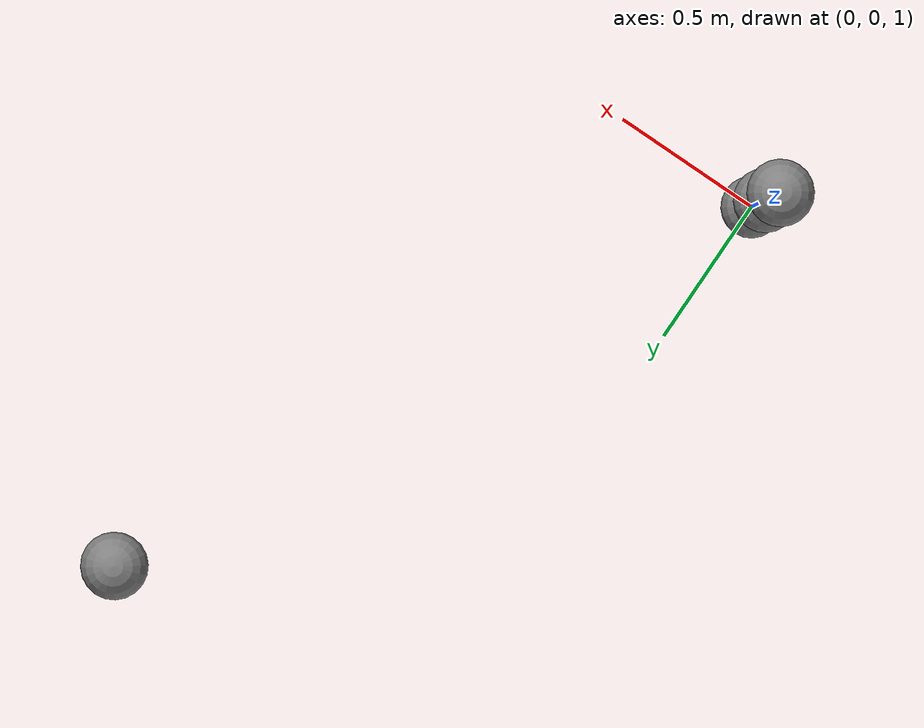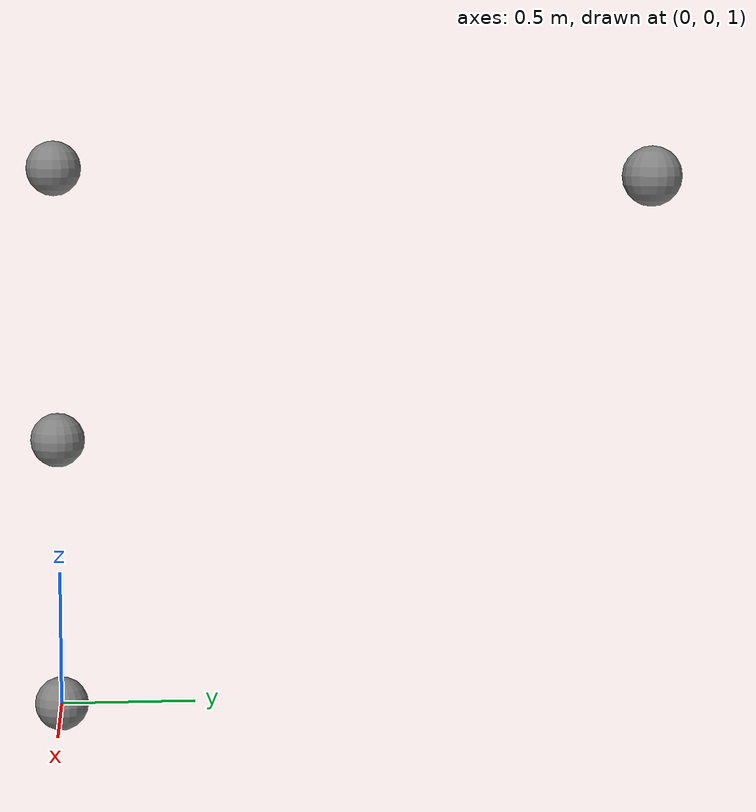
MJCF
<mujoco model="mixed_qpos_spring">
            <compiler angle="radian"/>
            <worldbody>
                <body name="hinge_body" pos="0 0 1">
                    <joint name="j_hinge" type="hinge" axis="0 1 0" springref="0.5"/>
                    <geom type="sphere" size="0.1" mass="1.0"/>
                </body>
                <body name="slide_body" pos="0 0 2">
                    <joint name="j_slide" type="slide" axis="0 0 1" springref="0.1"/>
                    <geom type="sphere" size="0.1" mass="1.0"/>
                </body>
                <body name="ball_body" pos="0 0 3">
                    <joint name="j_ball" type="ball"/>
                    <geom type="sphere" size="0.1" mass="1.0"/>
                </body>
                <body name="free_body" pos="1 2 3">
                    <freejoint name="j_free"/>
                    <geom type="sphere" size="0.1" mass="1.0"/>
                </body>
            </worldbody>
        </mujoco>
